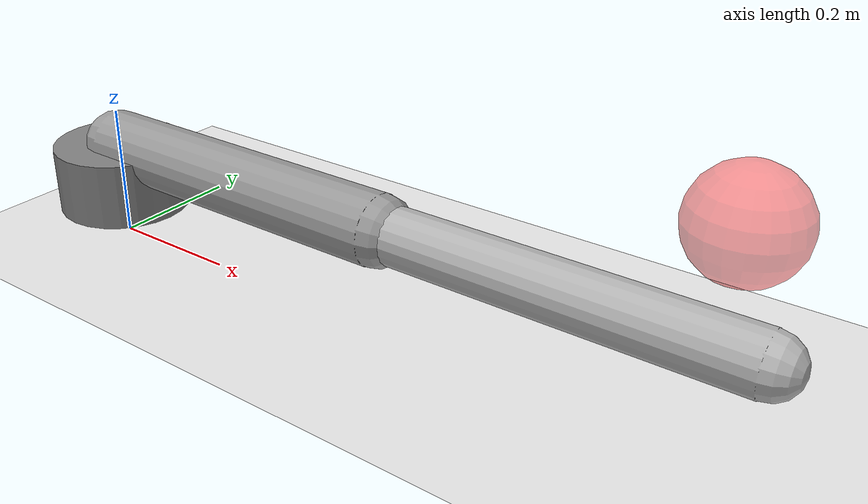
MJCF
<mujoco model="ag_chaos_sandbox">
    <compiler angle="degree" coordinate="local"/>
    <option gravity="0 0 -9.81" timestep="0.002"/>

    <worldbody>
        <!-- 光源与地板 -->
        <light pos="0 0 3" dir="0 0 -1"/>
        <geom type="plane" size="2 2 0.1" rgba="0.9 0.9 0.9 1"/>

        <!-- 极简机械臂 (用胶囊体代表连杆，仅 2 个自由度演示) -->
        <body name="robot_base" pos="0 0 0.1">
            <geom type="cylinder" size="0.1 0.05" rgba="0.5 0.5 0.5 1"/>

            <body name="link1" pos="0 0 0.05">
                <joint name="joint1" type="hinge" axis="0 0 1" range="-180 180"/>
                <geom type="capsule" fromto="0 0 0  0.5 0 0" size="0.05" rgba="0.6 0.6 0.6 1"/>

                <body name="link2" pos="0.5 0 0">
                    <joint name="joint2" type="hinge" axis="0 1 0" range="-90 90"/>
                    <!-- 末端执行器 -->
                    <geom name="end_effector" type="capsule" fromto="0 0 0  0.5 0 0" size="0.04" rgba="0.7 0.7 0.7 1"/>
                </body>
            </body>
        </body>

        <!-- 目标农作物：番茄花序 (幽灵形态) -->
        <body name="tomato_flower" pos="0.9 0.2 0.2">
            <!-- 核心：contype="0" conaffinity="0" 让机械臂物理穿透它，不产生反弹力 -->
            <geom name="flower_visual" type="sphere" size="0.08" rgba="1 0.2 0.2 0.5" contype="0" conaffinity="0"/>
            <!-- 挂载空间传感器 Site -->
            <site name="flower_sensor_zone" type="sphere" size="0.08" rgba="1 1 0 0.2"/>
        </body>
    </worldbody>

    <sensor>
        <!-- 触觉传感器：监听机械臂末端是否进入了花序的 Site 区域 -->
        <touch name="flower_collision" site="flower_sensor_zone"/>
    </sensor>
</mujoco>
